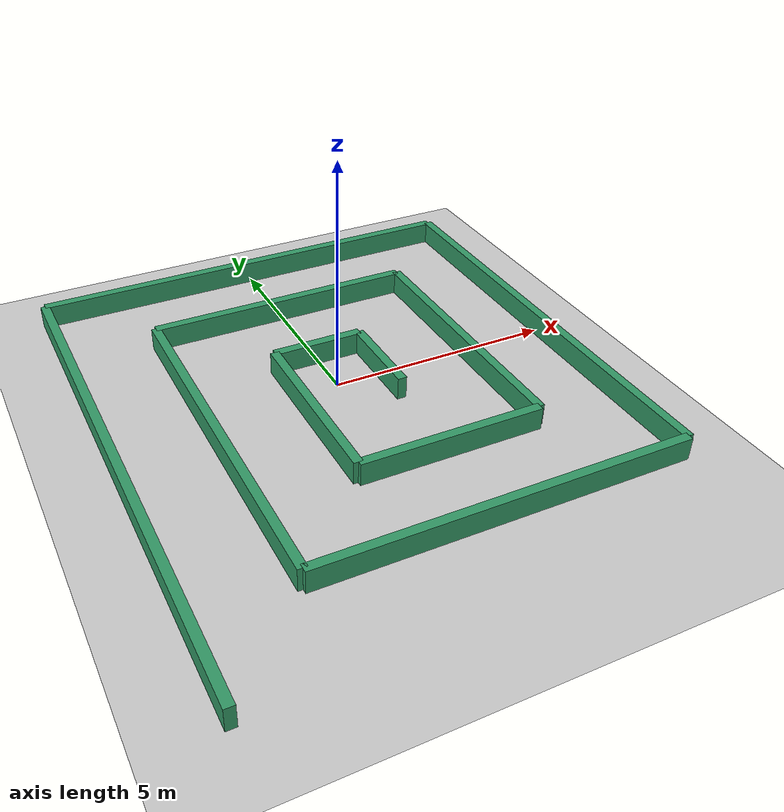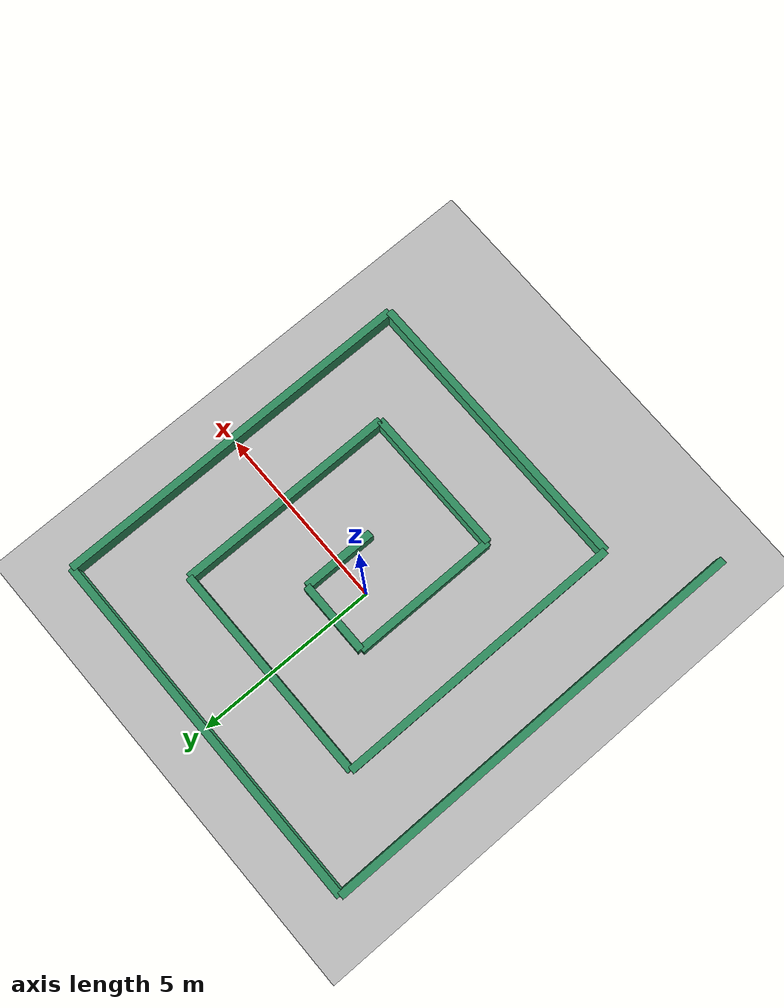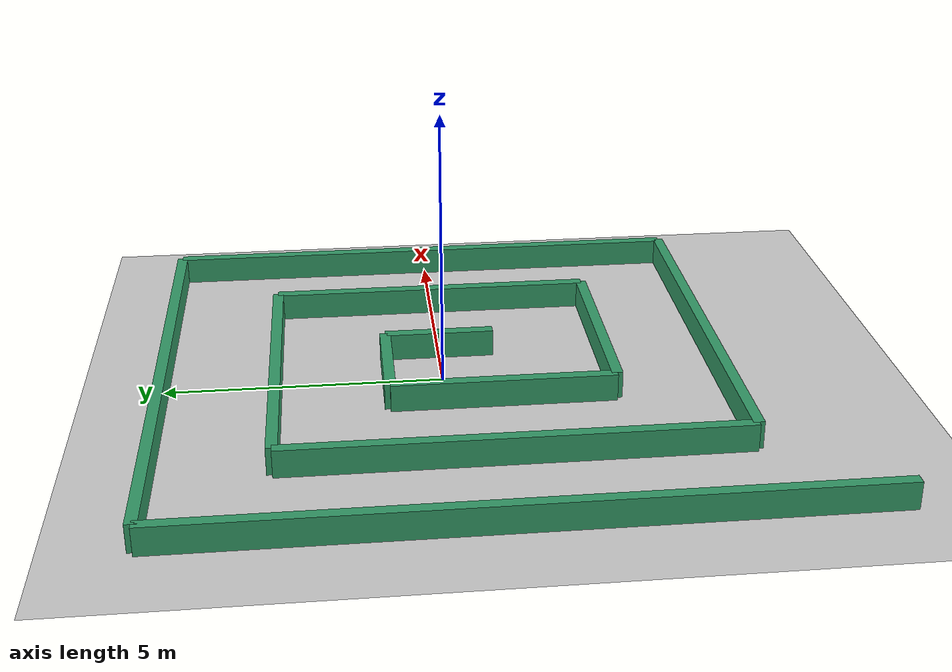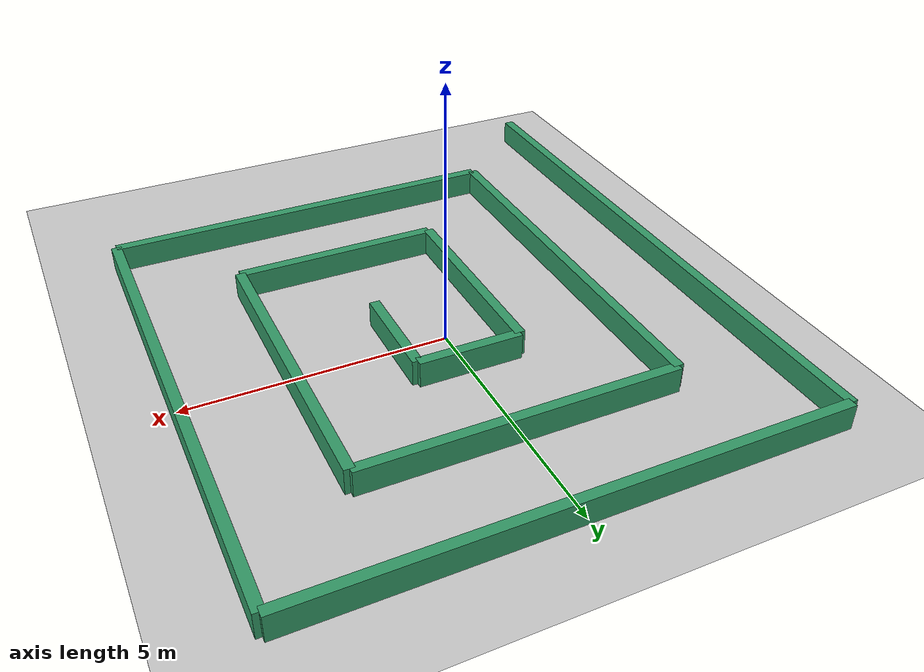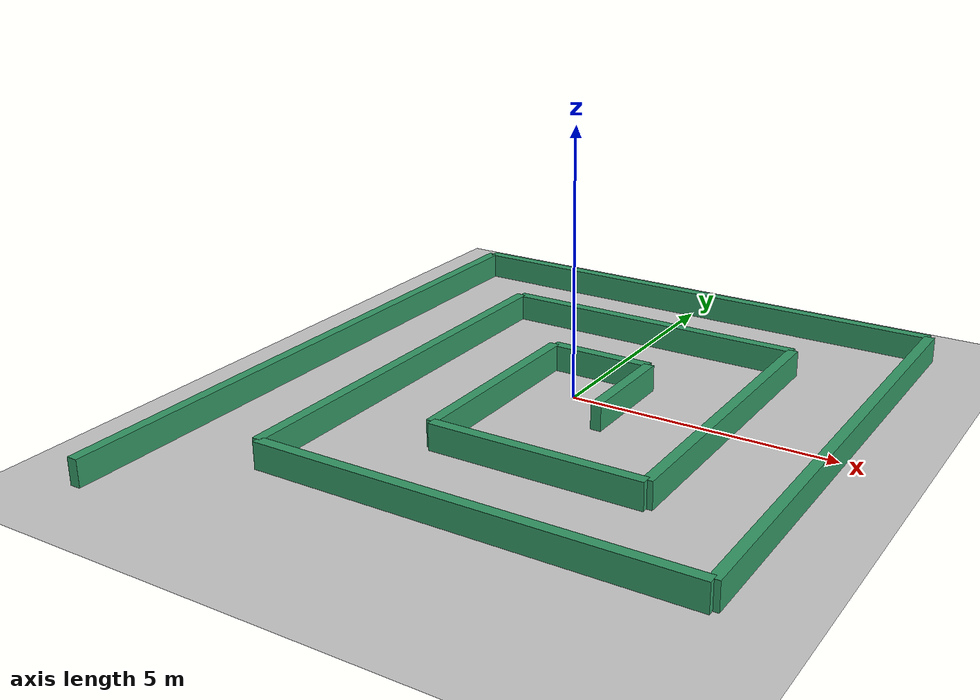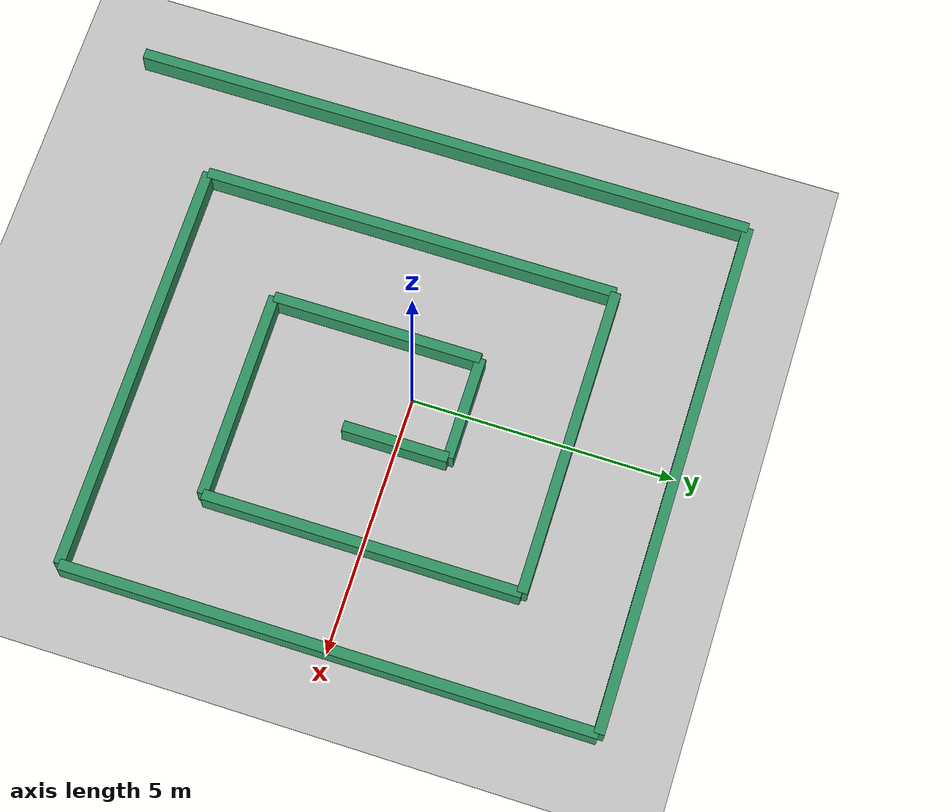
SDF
<?xml version="1.0" ?>
<sdf version="1.8">
  <world name="spiral">

    <physics name="1ms" type="ignored">
      <max_step_size>0.001</max_step_size>
      <real_time_factor>1.0</real_time_factor>
    </physics>
    <plugin filename="gz-sim-physics-system" name="gz::sim::systems::Physics"/>
    <plugin filename="gz-sim-user-commands-system" name="gz::sim::systems::UserCommands"/>
    <plugin filename="gz-sim-scene-broadcaster-system" name="gz::sim::systems::SceneBroadcaster"/>

    <plugin filename="gz-sim-contact-system" name="gz::sim::systems::Contact"/>
    <plugin filename="gz-sim-imu-system" name="gz::sim::systems::Imu"/>

    <light type="directional" name="sun">
      <cast_shadows>true</cast_shadows>
      <pose>0 0 10 0 0 0</pose>
      <diffuse>0.8 0.8 0.8 1</diffuse>
      <specular>0.2 0.2 0.2 1</specular>
      <direction>-0.5 0.1 -0.9</direction>
    </light>

    <model name="ground_plane">
      <static>true</static>
      <link name="link">
        <collision name="collision">
          <geometry>
            <plane><normal>0 0 1</normal><size>100 100</size></plane>
          </geometry>
        </collision>
        <visual name="visual">
          <geometry>
            <plane><normal>0 0 1</normal><size>100 100</size></plane>
          </geometry>
          <material>
            <ambient>0.8 0.8 0.8 1</ambient>
            <diffuse>0.8 0.8 0.8 1</diffuse>
          </material>
        </visual>
      </link>
    </model>

    <model name="spiral">
      <static>true</static>

      <link name="wall_1">
        <pose>1 0 0.25 0 0 0</pose>
        <collision name="c1"><geometry><box><size>0.2 2.0 0.5</size></box></geometry></collision>
        <visual name="v1"><geometry><box><size>0.2 2.0 0.5</size></box></geometry>
          <material><ambient>0.2 0.6 0.4 1</ambient><diffuse>0.2 0.6 0.4 1</diffuse></material>
        </visual>
      </link>

      <link name="wall_2">
        <pose>0 1 0.25 0 0 0</pose>
        <collision name="c2"><geometry><box><size>2.0 0.2 0.5</size></box></geometry></collision>
        <visual name="v2"><geometry><box><size>2.0 0.2 0.5</size></box></geometry>
          <material><ambient>0.2 0.6 0.4 1</ambient><diffuse>0.2 0.6 0.4 1</diffuse></material>
        </visual>
      </link>

      <link name="wall_3">
        <pose>-1 -1 0.25 0 0 0</pose>
        <collision name="c3"><geometry><box><size>0.2 4.0 0.5</size></box></geometry></collision>
        <visual name="v3"><geometry><box><size>0.2 4.0 0.5</size></box></geometry>
          <material><ambient>0.2 0.6 0.4 1</ambient><diffuse>0.2 0.6 0.4 1</diffuse></material>
        </visual>
      </link>

      <link name="wall_4">
        <pose>1 -3 0.25 0 0 0</pose>
        <collision name="c4"><geometry><box><size>4.0 0.2 0.5</size></box></geometry></collision>
        <visual name="v4"><geometry><box><size>4.0 0.2 0.5</size></box></geometry>
          <material><ambient>0.2 0.6 0.4 1</ambient><diffuse>0.2 0.6 0.4 1</diffuse></material>
        </visual>
      </link>

      <link name="wall_5">
        <pose>3 0 0.25 0 0 0</pose>
        <collision name="c5"><geometry><box><size>0.2 6.0 0.5</size></box></geometry></collision>
        <visual name="v5"><geometry><box><size>0.2 6.0 0.5</size></box></geometry>
          <material><ambient>0.2 0.6 0.4 1</ambient><diffuse>0.2 0.6 0.4 1</diffuse></material>
        </visual>
      </link>

      <link name="wall_6">
        <pose>0 3 0.25 0 0 0</pose>
        <collision name="c6"><geometry><box><size>6.0 0.2 0.5</size></box></geometry></collision>
        <visual name="v6"><geometry><box><size>6.0 0.2 0.5</size></box></geometry>
          <material><ambient>0.2 0.6 0.4 1</ambient><diffuse>0.2 0.6 0.4 1</diffuse></material>
        </visual>
      </link>

      <link name="wall_7">
        <pose>-3 -1 0.25 0 0 0</pose>
        <collision name="c7"><geometry><box><size>0.2 8.0 0.5</size></box></geometry></collision>
        <visual name="v7"><geometry><box><size>0.2 8.0 0.5</size></box></geometry>
          <material><ambient>0.2 0.6 0.4 1</ambient><diffuse>0.2 0.6 0.4 1</diffuse></material>
        </visual>
      </link>

      <link name="wall_8">
        <pose>1 -5 0.25 0 0 0</pose>
        <collision name="c8"><geometry><box><size>8.0 0.2 0.5</size></box></geometry></collision>
        <visual name="v8"><geometry><box><size>8.0 0.2 0.5</size></box></geometry>
          <material><ambient>0.2 0.6 0.4 1</ambient><diffuse>0.2 0.6 0.4 1</diffuse></material>
        </visual>
      </link>

      <link name="wall_9">
        <pose>5 0 0.25 0 0 0</pose>
        <collision name="c9"><geometry><box><size>0.2 10.0 0.5</size></box></geometry></collision>
        <visual name="v9"><geometry><box><size>0.2 10.0 0.5</size></box></geometry>
          <material><ambient>0.2 0.6 0.4 1</ambient><diffuse>0.2 0.6 0.4 1</diffuse></material>
        </visual>
      </link>

      <link name="wall_10">
        <pose>0 5 0.25 0 0 0</pose>
        <collision name="c10"><geometry><box><size>10.0 0.2 0.5</size></box></geometry></collision>
        <visual name="v10"><geometry><box><size>10.0 0.2 0.5</size></box></geometry>
          <material><ambient>0.2 0.6 0.4 1</ambient><diffuse>0.2 0.6 0.4 1</diffuse></material>
        </visual>
      </link>

      <link name="wall_11">
        <pose>-5 -1 0.25 0 0 0</pose>
        <collision name="c11"><geometry><box><size>0.2 12.0 0.5</size></box></geometry></collision>
        <visual name="v11"><geometry><box><size>0.2 12.0 0.5</size></box></geometry>
          <material><ambient>0.2 0.6 0.4 1</ambient><diffuse>0.2 0.6 0.4 1</diffuse></material>
        </visual>
      </link>

    </model>
  </world>
</sdf>
